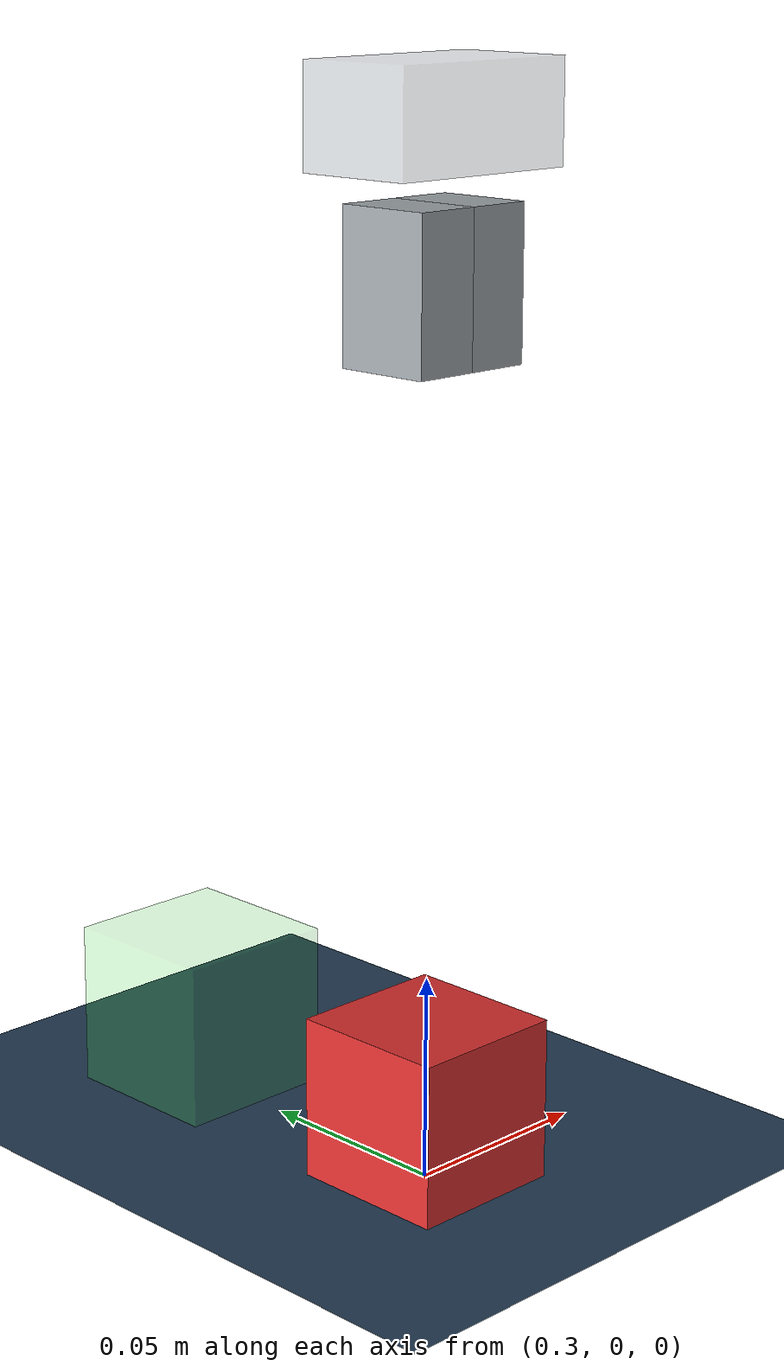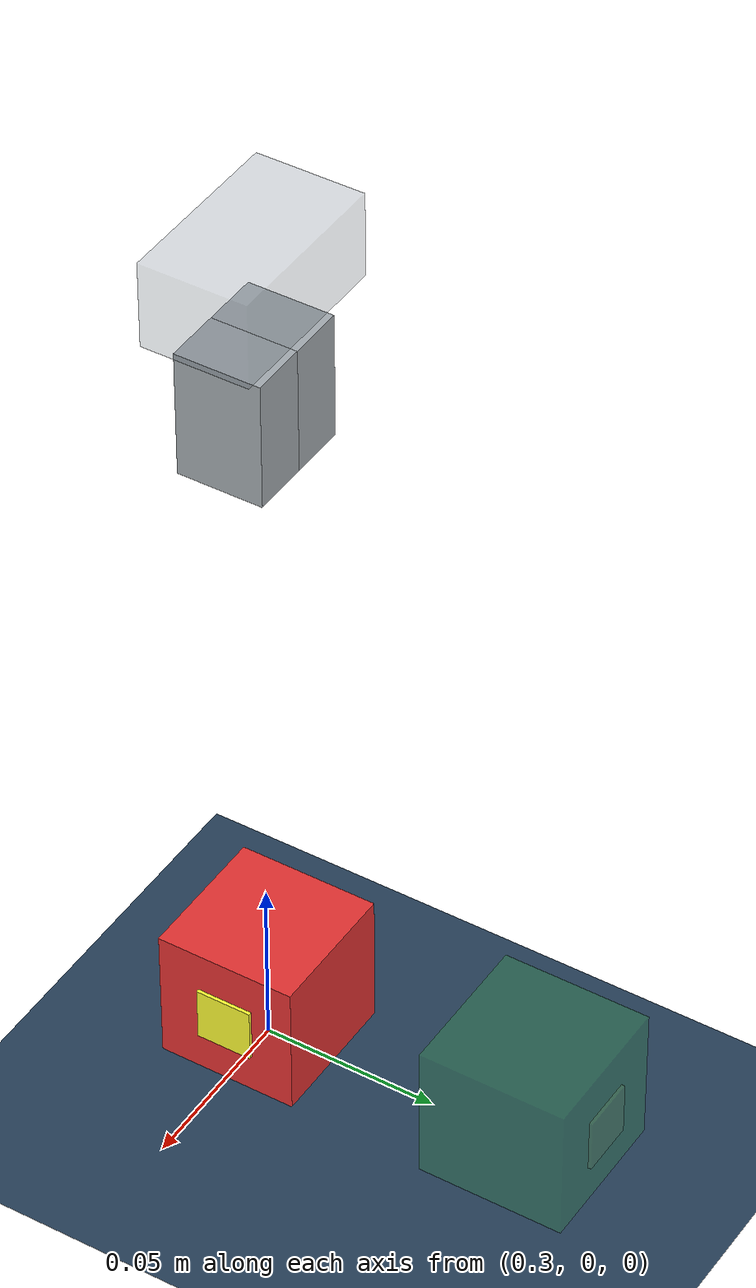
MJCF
<mujoco model="grjl4_floating_gripper">

  <compiler angle="radian" autolimits="true" meshdir="../assets"/>

  <visual>
    <global offwidth="1280" offheight="960"/>
    <map force="0.05" zfar="5"/>
  </visual>

  <option timestep="0.002" gravity="0 0 -9.81" integrator="implicit"
          cone="elliptic" impratio="10">
    <flag contact="enable"/>
  </option>

  <size nconmax="200" njmax="500"/>

  <!-- ── Defaults ─────────────────────────────────────── -->
  <default>
    <default class="block">
      <geom condim="4" friction="0.8 0.8 0.001" density="625"
            solref="0.004 0.8" solimp="0.95 0.99 0.001"
            group="0"/>
    </default>
    <default class="finger_pad">
      <geom type="box" condim="4" friction="1.0 1.0 0.001"
            solref="0.005 1" solimp="0.95 0.99 0.001"
            group="1"/>
    </default>
  </default>

  <!-- ── Assets ───────────────────────────────────────── -->
  <asset>
    <texture type="skybox" builtin="gradient" rgb1="0.3 0.5 0.7"
             rgb2="0 0 0" width="512" height="3072"/>
    <texture type="2d" name="groundplane" builtin="checker"
             mark="edge" rgb1="0.2 0.3 0.4" rgb2="0.1 0.2 0.3"
             markrgb="0.8 0.8 0.8" width="300" height="300"/>
    <material name="groundplane" texture="groundplane"
              texuniform="true" texrepeat="5 5" reflectance="0.2"/>

    <!-- Block colours -->
    <material name="block_cube"     rgba="0.9 0.2 0.2 1"/>
    <material name="block_cuboid"   rgba="0.2 0.7 0.2 1"/>
    <material name="block_mortise"  rgba="0.2 0.3 0.9 1"/>
    <material name="block_tenon"    rgba="0.9 0.6 0.1 1"/>

    <!-- Gripper appearance -->
    <material name="gripper_body" rgba="0.5 0.55 0.6 0.3"
              specular="0.5" shininess="0.5"/>
    <material name="finger_steel" rgba="0.65 0.68 0.7 0.9"
              specular="0.8" shininess="0.8"/>

    <!-- Block meshes (scale 1.0) -->
    <mesh name="mortise_L" file="mortise_L.stl"/>
    <mesh name="mortise_R" file="mortise_R.stl"/>
    <mesh name="tenon"     file="tenon.stl"/>

    <!-- Scaled meshes (0.7×) -->
    <mesh name="mortise_L_s070" file="mortise_L_s070.stl"/>
    <mesh name="mortise_R_s070" file="mortise_R_s070.stl"/>
    <mesh name="tenon_s070"     file="tenon_s070.stl"/>

    <!-- Scaled meshes (1.3×) -->
    <mesh name="mortise_L_s130" file="mortise_L_s130.stl"/>
    <mesh name="mortise_R_s130" file="mortise_R_s130.stl"/>
    <mesh name="tenon_s130"     file="tenon_s130.stl"/>
  </asset>

  <!-- ── World ────────────────────────────────────────── -->
  <worldbody>
    <light pos="0 0 2.0" dir="0 0 -1" directional="true"/>
    <geom name="floor" size="0 0 0.05" type="plane"
          material="groundplane"/>

    <camera name="overhead" pos="0.3 0 0.6" xyaxes="1 0 0 0 1 0"/>
    <camera name="side"     pos="0.6 0 0.15" xyaxes="0 1 0 0 0 1"/>

    <!-- ── Mocap target (invisible command body) ──────── -->
    <body name="mocap_target" mocap="true" pos="0.3 0 0.25"
          quat="0.707107 0.707107 0 0">
      <geom type="sphere" size="0.003" rgba="1 0 0 0.3"
            contype="0" conaffinity="0" group="2"/>
    </body>

    <!-- ── Dynamic hand body (welded to mocap) ────────── -->
    <body name="hand" pos="0.3 0 0.25" quat="0.707107 0.707107 0 0">
      <freejoint name="hand_joint"/>
      <geom name="hand_visual" type="box" size="0.025 0.012 0.015"
            material="gripper_body" contype="0" conaffinity="0"
            group="1" mass="0.5"/>

      <!-- Left finger: slides along local +x (= world +x) -->
      <body name="left_finger" pos="0 -0.025 0">
        <joint name="finger_joint1" type="slide" axis="1 0 0"
               range="0 0.04" damping="20"/>
        <geom name="left_pad" class="finger_pad"
              size="0.008 0.018 0.012" pos="0.008 -0.012 0"
              material="finger_steel"/>
      </body>

      <!-- Right finger: slides along local −x (= world −x) -->
      <body name="right_finger" pos="0 -0.025 0">
        <joint name="finger_joint2" type="slide" axis="-1 0 0"
               range="0 0.04" damping="20"/>
        <geom name="right_pad" class="finger_pad"
              size="0.008 0.018 0.012" pos="-0.008 -0.012 0"
              material="finger_steel"/>
      </body>
    </body>

    <!-- ── Blocks ──────────────────────────────────────── -->
    <body name="block_cube_0" pos="0.3 0 0.02">
      <freejoint name="block_cube_0_joint"/>
      <geom name="block_cube_0_geom" class="block" type="box"
            size="0.02 0.02 0.02" material="block_cube" mass="0.1"/>
      <!-- Face marker on +x face: makes rotation visible -->
      <geom name="block_cube_0_mark" type="box"
            size="0.001 0.008 0.008" pos="0.02 0 0"
            rgba="1 1 0.2 1" contype="0" conaffinity="0"
            group="0" mass="0.001"/>
    </body>

    <!-- Goal pose ghost (translucent green, no collision) -->
    <body name="goal" pos="0.3 0.08 0.02"
          quat="0.707107 0 0 0.707107">
      <geom name="goal_geom" type="box" size="0.021 0.021 0.021"
            rgba="0.2 0.9 0.2 0.15" contype="0" conaffinity="0"
            group="0"/>
      <geom name="goal_mark" type="box"
            size="0.001 0.008 0.008" pos="0.021 0 0"
            rgba="0.5 1 0.2 0.2" contype="0" conaffinity="0"
            group="0" mass="0.001"/>
    </body>

  </worldbody>

  <!-- ── Constraints ──────────────────────────────────── -->
  <equality>
    <!-- Weld hand to mocap target: transfers position command
         to a dynamic body that has real solver velocity -->
    <weld body1="mocap_target" body2="hand"
          solref="0.001 1" solimp="0.95 0.99 0.001"/>

    <!-- Couple finger joints (symmetric open/close) -->
    <joint joint1="finger_joint1" joint2="finger_joint2"
           solimp="0.95 0.99 0.001" solref="0.005 1"/>
  </equality>

  <actuator>
    <!-- ctrl=0 → closed, ctrl=0.04 → fully open -->
    <position name="fingers" joint="finger_joint1"
              kp="800" ctrlrange="0 0.04"/>
  </actuator>

  <keyframe>
    <key name="ready"
         qpos="0.3 0 0.25 0.707107 0.707107 0 0 0.02 0.02
               0.3 0 0.02 1 0 0 0"
         ctrl="0.04"/>
  </keyframe>

</mujoco>
